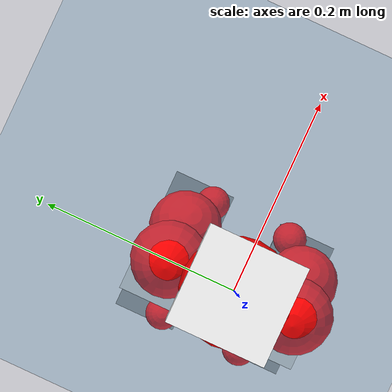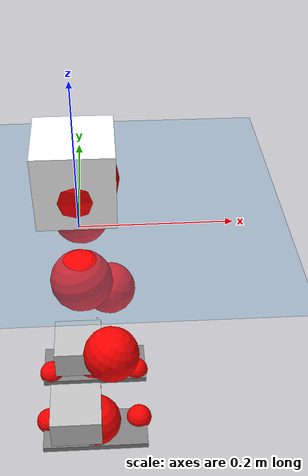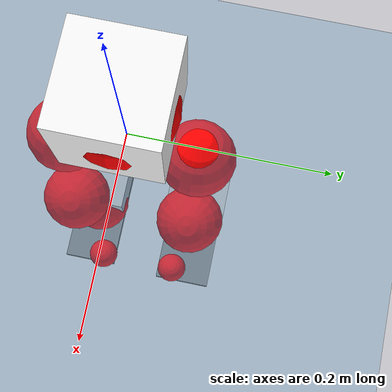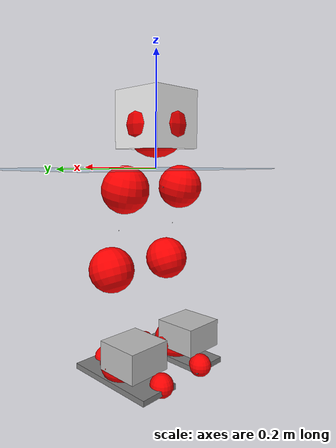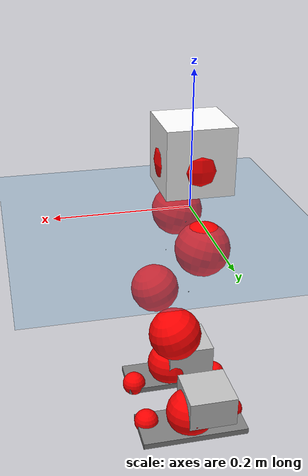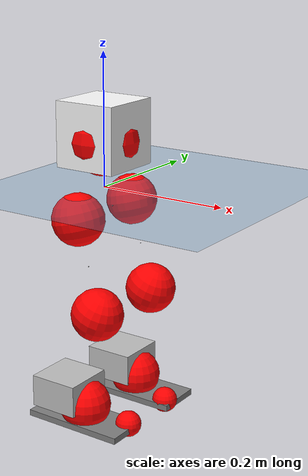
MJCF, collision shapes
<mujoco model="pi_12dof_release_v1">
  <compiler angle="radian" assetdir="assets" balanceinertia="true" inertiafromgeom="false"/>

  <option timestep="0.005" density="1.2" viscosity="2e-05"/>

  <size nkey="1"/>

  <visual>
    <quality shadowsize="8192"/>
    <map shadowclip="0.5"/>
  </visual>

  <default>
    <default class="/">
      <joint armature="0.01" damping="0.01" frictionloss="0.01"/>
      <geom contype="0" conaffinity="0" group="1" solref="-1000 -80"/>
      <site size="0.01 0.005 0.005" group="5"/>
      <general forcelimited="true" biastype="affine" gainprm="20" biasprm="0 -20 -0.5"/>
      <default class="foot">
        <geom size="0.0845 0.036 0.005" type="box" condim="6" group="4" priority="1" friction="0.9 0.2 0.2" solimp="0.015 1 0.005"/>
      </default>
      <default class="reward_collision_sphere">
        <geom group="5" rgba="1 0 0 1"/>
      </default>
    </default>
  </default>

  <asset>
    <texture type="skybox" colorspace="auto" name="//unnamed_texture_0" builtin="gradient" rgb1="0.95 0.95 0.95" rgb2="0.95 0.95 0.95" width="100" height="600"/>
    <texture type="2d" colorspace="auto" name="texplane" builtin="checker" rgb1="0.345 0.575 0.748" rgb2="0.345 0.575 0.748" markrgb="1 1 1" width="512" height="512"/>
    <material name="MatPlane" class="/" texture="texplane" texuniform="true" texrepeat="2 2" specular="0.9"/>
    <mesh name="baselink_1" class="/" file="baselink_1.STL"/>
    <mesh name="r_hip_pitch_link" class="/" file="r_hip_pitch_link.STL"/>
    <mesh name="r_hip_roll_link" class="/" file="r_hip_roll_link.STL"/>
    <mesh name="r_thigh_link" class="/" file="r_thigh_link.STL"/>
    <mesh name="r_calf_link" class="/" file="r_calf_link.STL"/>
    <mesh name="r_ankle_pitch_link" class="/" file="r_ankle_pitch_link.STL"/>
    <mesh name="r_ankle_roll_link" class="/" file="r_ankle_roll_link.STL"/>
    <mesh name="l_hip_pitch_link" class="/" file="l_hip_pitch_link.STL"/>
    <mesh name="l_hip_roll_link" class="/" file="l_hip_roll_link.STL"/>
    <mesh name="l_thigh_link" class="/" file="l_thigh_link.STL"/>
    <mesh name="l_calf_link" class="/" file="l_calf_link.STL"/>
    <mesh name="l_ankle_pitch_link" class="/" file="l_ankle_pitch_link.STL"/>
    <mesh name="l_ankle_roll_link" class="/" file="l_ankle_roll_link.STL"/>
  </asset>

  <worldbody>
    <geom name="floor" class="/" size="100 100 0.125" type="plane" group="0" material="MatPlane"/>
    <light name="toplight_shadow" class="/" pos="0 0 5" dir="0.0990148 0.0990148 -0.990148" type="directional" ambient="0.04 0.04 0.04" diffuse="0.55 0.55 0.55" specular="0.12 0.12 0.12"/>
    <light name="toplight_fill" class="/" pos="0 0 5" dir="0.0990148 0.0990148 -0.990148" type="directional" castshadow="false" ambient="0.04 0.04 0.04" diffuse="0.3 0.3 0.3" specular="0.08 0.08 0.08"/>
    <body name="trunk" pos="-0.000359461 -4.78747e-05 -0.000154336" quat="1 -0.000225228 0.000110745 -0.000198064">
      <inertial pos="0.00126406 -0.00107485 0.0418757" quat="0.696343 0.0077878 0.00898524 0.717611" mass="2.06502" diaginertia="0.0124566 0.00446517 0.00486573"/>
      <joint name="//unnamed_joint_0" type="free"/>
      <geom name="//unnamed_geom_1" class="/" type="mesh" density="0" rgba="1 1 1 1" mesh="baselink_1"/>
      <geom name="//unnamed_geom_2" class="/" size="0.0491998 0.0491998 0.0491998" pos="0 0 0.0825006" type="box" rgba="1 1 1 1"/>
      <geom name="//unnamed_geom_3" class="reward_collision_sphere" size="0.0541197" pos="0 0 0.0721881"/>
      <site name="imu" class="/" pos="0.00189386 -0.000298045 -0.0017956" size="0.00983995"/>
      <camera name="track" class="/" pos="0 -1.74003 0" quat="0.707107 0.707107 0 0" mode="trackcom"/>
      <camera name="ego_camera" class="/" pos="0.0788033 0 0.185626" quat="-0.5 -0.5 0.5 0.5"/>
      <body name="r_hip_pitch_link" pos="0.000566032 -0.0187522 -0.033233" quat="0.992202 -2.49098e-05 -0.124642 3.15615e-05">
        <inertial pos="0.00115487 -0.0482686 -2.07031e-05" quat="-0.0187592 0.706007 -0.0282879 0.707391" mass="0.344024" diaginertia="0.00013745 4.84355e-05 9.56602e-05"/>
        <joint name="r_hip_pitch_joint" class="/" pos="0 0 0" axis="-0.00136983 -0.999999 0.000329076" range="-1.74945 1.23657" armature="0.0098843" damping="0.0134768" frictionloss="0.0101018"/>
        <geom name="//unnamed_geom_4" class="/" type="mesh" density="0" rgba="0.75294 0.75294 0.75294 1" mesh="r_hip_pitch_link"/>
        <geom name="//unnamed_geom_5" class="/" size="0.000491998 0.000491998 0.000491998" type="box" rgba="0.75294 0.75294 0.75294 1"/>
        <body name="r_hip_roll_link" pos="0.0014046 -0.0473445 -0.000914964" quat="1 6.15908e-06 -1.54194e-05 -6.45422e-06">
          <inertial pos="-0.00122198 -5.04762e-05 -0.0637323" quat="0.707641 -0.0790821 -0.0812238 0.697419" mass="0.374705" diaginertia="0.000428737 0.000137484 0.000150409"/>
          <joint name="r_hip_roll_joint" class="/" pos="0 0 0" axis="-0.999994 -0.00341958 -0.00102033" range="-0.116662 0.498721" armature="0.0103008" damping="0.00108555" frictionloss="0.0101082"/>
          <geom name="//unnamed_geom_6" class="/" type="mesh" density="0" rgba="0.75294 0.75294 0.75294 1" mesh="r_hip_roll_link"/>
          <geom name="//unnamed_geom_7" class="/" size="0.000491998 0.000491998 0.000491998" type="box" rgba="0.75294 0.75294 0.75294 1"/>
          <geom name="//unnamed_geom_8" class="reward_collision_sphere" size="0.0393598"/>
          <body name="r_thigh_link" pos="-0.000910051 0.00106711 -0.070887" quat="1 -7.43808e-05 -6.78462e-05 -0.000151626">
            <inertial pos="0.000411992 0.00126546 -0.0481205" quat="0.737049 0.675839 0.000762846 -0.000206736" mass="0.106743" diaginertia="0.00015965 4.68466e-05 6.75844e-05"/>
            <joint name="r_thigh_joint" class="/" pos="0 0 0" axis="-0.000100766 -0.000911776 -1" range="-0.287286 0.584176" armature="0.010079" damping="0.00973952" frictionloss="0.00944089"/>
            <geom name="//unnamed_geom_9" class="/" type="mesh" density="0" rgba="0.75294 0.75294 0.75294 1" mesh="r_thigh_link"/>
            <geom name="//unnamed_geom_10" class="/" size="0.000491998 0.000491998 0.000491998" type="box" rgba="0.75294 0.75294 0.75294 1"/>
            <body name="r_calf_link" pos="-0.000693612 -0.00255869 -0.0726307" quat="0.94764 -1.58458e-05 0.319342 9.96415e-06">
              <inertial pos="0.000502538 -0.0019005 -0.0711548" quat="0.999995 0.000169462 0.00152471 0.0027584" mass="0.781967" diaginertia="0.00455921 0.00176062 0.000206281"/>
              <joint name="r_calf_joint" class="/" pos="0 0 0" axis="-0.000523584 -0.999987 -0.0050176" stiffness="0.00153643" range="-1.65045 0.637988" armature="0.0102551" damping="0.00732282" frictionloss="0.00971495"/>
              <geom name="//unnamed_geom_11" class="/" type="mesh" density="0" rgba="0.75294 0.75294 0.75294 1" mesh="r_calf_link"/>
              <geom name="//unnamed_geom_12" class="/" size="0.000491998 0.000491998 0.000491998" type="box" rgba="0.75294 0.75294 0.75294 1"/>
              <geom name="//unnamed_geom_13" class="reward_collision_sphere" size="0.0393598"/>
              <body name="r_ankle_pitch_link" pos="-0.000154879 0.000622955 -0.144508" quat="0.980071 -3.63955e-05 -0.198645 -2.12828e-07">
                <inertial pos="0.00527644 0.00280449 0.000692188" quat="-0.000867434 0.70938 -0.00118581 0.704824" mass="0.165528" diaginertia="0.000395969 0.00011026 0.000139578"/>
                <joint name="r_ankle_pitch_joint" class="/" pos="0 0 0" axis="-0.0055924 -0.999984 4.40717e-05" range="-1.29839 0.483849" armature="0.00936292" damping="0.00734493" frictionloss="0.00989268"/>
                <geom name="//unnamed_geom_14" class="/" type="mesh" density="0" rgba="0.75294 0.75294 0.75294 1" mesh="r_ankle_pitch_link"/>
                <geom name="//unnamed_geom_15" class="/" size="0.0383758 0.0393598 0.0245999" type="box" rgba="0.75294 0.75294 0.75294 1"/>
                <body name="r_ankle_roll_link" pos="0.0811122 0.00314064 -0.000250654" quat="1 0.000135032 0.000380139 2.90733e-05">
                  <inertial pos="-0.0246601 0.000164271 -0.0150602" quat="0.561714 0.432229 0.431436 0.558139" mass="0.485402" diaginertia="0.00143115 0.0005151 0.000327848"/>
                  <joint name="r_ankle_roll_joint" class="/" pos="0 0 0" axis="-0.999993 -0.00148932 0.00337611" range="-0.167329 0.153385" armature="0.0101138" damping="0.00709939" frictionloss="0.0100027"/>
                  <geom name="//unnamed_geom_16" class="/" type="mesh" density="0" rgba="0.75294 0.75294 0.75294 1" mesh="r_ankle_roll_link"/>
                  <geom name="//unnamed_geom_17" class="/" type="mesh" rgba="0.75294 0.75294 0.75294 1" mesh="r_ankle_roll_link"/>
                  <geom name="right_foot" class="foot" size="0.0808376 0.0343139 0.00474617" pos="-0.0535862 0 -0.0453754"/>
                  <geom name="//unnamed_geom_19" class="reward_collision_sphere" size="0.0393598" pos="-0.0525355 0 -0.0206252"/>
                  <geom name="//unnamed_geom_20" class="reward_collision_sphere" size="0.0196799" pos="0.0157607 0.0174003 -0.0412503"/>
                  <geom name="//unnamed_geom_21" class="reward_collision_sphere" size="0.0196799" pos="-0.126085 0.0174003 -0.0412503"/>
                  <site name="right_foot" class="foot" pos="-0.0535862 0 -0.0453754" size="0.00983995"/>
                </body>
              </body>
            </body>
          </body>
        </body>
      </body>
      <body name="l_hip_pitch_link" pos="5.54043e-05 0.0207986 -0.0337595" quat="0.9922 2.2674e-06 -0.124653 6.77829e-06">
        <inertial pos="0.00106744 0.046031 -0.000837092" quat="-0.0372989 0.706268 0.0311431 0.706275" mass="0.373444" diaginertia="0.000167927 5.24185e-05 0.000119545"/>
        <joint name="l_hip_pitch_joint" class="/" pos="0 0 0" axis="-1.10322e-05 1 -0.000220981" range="-1.23687 1.75024" armature="0.00973808" damping="0.00756989" frictionloss="0.0102609"/>
        <geom name="//unnamed_geom_22" class="/" type="mesh" density="0" rgba="0.75294 0.75294 0.75294 1" mesh="l_hip_pitch_link"/>
        <geom name="//unnamed_geom_23" class="/" size="0.000491998 0.000491998 0.000491998" type="box" rgba="0.75294 0.75294 0.75294 1"/>
        <body name="l_hip_roll_link" pos="0.000745316 0.0494428 -0.000473109" quat="1 -6.66526e-06 -4.51979e-06 -5.03364e-05">
          <inertial pos="-0.00226658 -0.000223523 -0.0638682" quat="0.69929 -0.0743972 -0.0782739 0.706634" mass="0.37595" diaginertia="0.000425982 0.000138347 0.000150815"/>
          <joint name="l_hip_roll_joint" class="/" pos="0 0 0" axis="-1 0.00041791 -0.000689723" range="-0.503145 0.106778" armature="0.00963604" damping="0.00231361" frictionloss="0.0102856"/>
          <geom name="//unnamed_geom_24" class="/" type="mesh" density="0" rgba="0.75294 0.75294 0.75294 1" mesh="l_hip_roll_link"/>
          <geom name="//unnamed_geom_25" class="/" size="0.000491998 0.000491998 0.000491998" type="box" rgba="0.75294 0.75294 0.75294 1"/>
          <geom name="//unnamed_geom_26" class="reward_collision_sphere" size="0.0393598"/>
          <body name="l_thigh_link" pos="0.000231267 -0.00081508 -0.0707226" quat="1 -1.95902e-05 2.94837e-05 -9.15959e-06">
            <inertial pos="-0.00039768 -0.001657 -0.0487954" quat="0.674555 0.738212 0.00239392 0.00367189" mass="0.108834" diaginertia="0.000164054 4.78154e-05 6.86087e-05"/>
            <joint name="l_thigh_joint" class="/" pos="0 0 0" axis="-0.000620815 0.00055263 -1" range="-0.612168 0.316661" armature="0.00980804" damping="0.00266681" frictionloss="0.00994332"/>
            <geom name="//unnamed_geom_27" class="/" type="mesh" density="0" rgba="0.75294 0.75294 0.75294 1" mesh="l_thigh_link"/>
            <geom name="//unnamed_geom_28" class="/" size="0.000491998 0.000491998 0.000491998" type="box" rgba="0.75294 0.75294 0.75294 1"/>
            <body name="l_calf_link" pos="0.000748893 0.000332026 -0.073" quat="0.947595 -0.000133467 0.319474 3.61133e-05">
              <inertial pos="0.00130732 0.00213514 -0.0731594" quat="0.999935 0.00597914 -0.0031241 0.00918417" mass="0.762763" diaginertia="0.0044558 0.00172746 0.000200789"/>
              <joint name="l_calf_joint" class="/" pos="0 0 0" axis="-0.00232831 0.999995 -0.00207675" stiffness="0.00200724" range="-0.650173 1.64778" armature="0.00991719" damping="0.00526116" frictionloss="0.00970449"/>
              <geom name="//unnamed_geom_29" class="/" type="mesh" density="0" rgba="0.75294 0.75294 0.75294 1" mesh="l_calf_link"/>
              <geom name="//unnamed_geom_30" class="/" size="0.000491998 0.000491998 0.000491998" type="box" rgba="0.75294 0.75294 0.75294 1"/>
              <geom name="//unnamed_geom_31" class="reward_collision_sphere" size="0.0393598"/>
              <body name="l_ankle_pitch_link" pos="0.00139543 0.000132961 -0.144541" quat="0.980088 8.548e-05 -0.198565 -8.59619e-05">
                <inertial pos="0.00511088 -0.00163681 0.00042758" quat="-0.00222945 0.707107 0.00221995 0.7071" mass="0.170849" diaginertia="0.000401466 0.000112114 0.000140973"/>
                <joint name="l_ankle_pitch_joint" class="/" pos="0 0 0" axis="-3.21158e-05 1 -0.000927131" range="-0.485943 1.32051" armature="0.0102417" damping="0.00621576" frictionloss="0.00958267"/>
                <geom name="//unnamed_geom_32" class="/" type="mesh" density="0" rgba="0.75294 0.75294 0.75294 1" mesh="l_ankle_pitch_link"/>
                <geom name="//unnamed_geom_33" class="/" size="0.0383758 0.0393598 0.0245999" type="box" rgba="0.75294 0.75294 0.75294 1"/>
                <body name="l_ankle_roll_link" pos="0.0789745 0.000233585 6.30637e-05" quat="1 -9.38814e-05 9.24955e-05 0.000200903">
                  <inertial pos="-0.0262744 0.000548469 -0.0144987" quat="0.55758 0.432011 0.434932 0.559736" mass="0.494647" diaginertia="0.00146171 0.000513829 0.000333535"/>
                  <joint name="l_ankle_roll_joint" class="/" pos="0 0 0" axis="-1 -0.000197772 0.000579841" range="-0.157457 0.169098" armature="0.00960433" damping="0.010506" frictionloss="0.00951778"/>
                  <geom name="//unnamed_geom_34" class="/" type="mesh" density="0" rgba="0.75294 0.75294 0.75294 1" mesh="l_ankle_roll_link"/>
                  <geom name="//unnamed_geom_35" class="/" type="mesh" rgba="0.75294 0.75294 0.75294 1" mesh="l_ankle_roll_link"/>
                  <geom name="left_foot" class="foot" size="0.0854013 0.0367314 0.00479482" pos="-0.0535862 0 -0.0453754"/>
                  <geom name="//unnamed_geom_37" class="reward_collision_sphere" size="0.0393598" pos="-0.0525355 0 -0.0206252"/>
                  <geom name="//unnamed_geom_38" class="reward_collision_sphere" size="0.0196799" pos="0.0157607 -0.0174003 -0.0412503"/>
                  <geom name="//unnamed_geom_39" class="reward_collision_sphere" size="0.0196799" pos="-0.126085 -0.0174003 -0.0412503"/>
                  <site name="left_foot" class="foot" pos="-0.0535862 0 -0.0453754" size="0.00983995"/>
                </body>
              </body>
            </body>
          </body>
        </body>
      </body>
    </body>
  </worldbody>

  <contact>
    <pair class="/" geom1="floor" geom2="right_foot" name="//unnamed_contact_1"/>
    <pair class="/" geom1="floor" geom2="left_foot" name="//unnamed_contact_0"/>
  </contact>

  <actuator>
    <general name="r_hip_pitch_joint" class="/" joint="r_hip_pitch_joint" forcerange="-20.3556 20.3556" gainprm="19.1626" biasprm="0 -19.1626 -0.485982"/>
    <general name="r_hip_roll_joint" class="/" joint="r_hip_roll_joint" forcerange="-20.651 20.651" gainprm="19.1626" biasprm="0 -19.1626 -0.485982"/>
    <general name="r_thigh_joint" class="/" joint="r_thigh_joint" forcerange="-20.5021 20.5021" gainprm="19.1626" biasprm="0 -19.1626 -0.485982"/>
    <general name="r_calf_joint" class="/" joint="r_calf_joint" forcerange="-20.8401 20.8401" gainprm="19.1626" biasprm="0 -19.1626 -0.485982"/>
    <general name="r_ankle_pitch_joint" class="/" joint="r_ankle_pitch_joint" forcerange="-20.9465 20.9465" gainprm="19.1626" biasprm="0 -19.1626 -0.485982"/>
    <general name="r_ankle_roll_joint" class="/" joint="r_ankle_roll_joint" forcerange="-20.6123 20.6123" gainprm="19.1626" biasprm="0 -19.1626 -0.485982"/>
    <general name="l_hip_pitch_joint" class="/" joint="l_hip_pitch_joint" forcerange="-21.1454 21.1454" gainprm="19.1626" biasprm="0 -19.1626 -0.485982"/>
    <general name="l_hip_roll_joint" class="/" joint="l_hip_roll_joint" forcerange="-20.226 20.226" gainprm="19.1626" biasprm="0 -19.1626 -0.485982"/>
    <general name="l_thigh_joint" class="/" joint="l_thigh_joint" forcerange="-20.7335 20.7335" gainprm="19.1626" biasprm="0 -19.1626 -0.485982"/>
    <general name="l_calf_joint" class="/" joint="l_calf_joint" forcerange="-20.7063 20.7063" gainprm="19.1626" biasprm="0 -19.1626 -0.485982"/>
    <general name="l_ankle_pitch_joint" class="/" joint="l_ankle_pitch_joint" forcerange="-20.0443 20.0443" gainprm="19.1626" biasprm="0 -19.1626 -0.485982"/>
    <general name="l_ankle_roll_joint" class="/" joint="l_ankle_roll_joint" forcerange="-20.2554 20.2554" gainprm="19.1626" biasprm="0 -19.1626 -0.485982"/>
  </actuator>

  <sensor>
    <gyro site="imu" name="imu_angular_velocity"/>
    <velocimeter site="imu" name="imu_linear_velocity"/>
    <framelinvel objtype="site" objname="left_foot" name="left_foot_global_linear_velocity"/>
    <framelinvel objtype="site" objname="right_foot" name="right_foot_global_linear_velocity"/>
  </sensor>

  <keyframe>
    <key name="home" qpos="0 0 0.291 1 0 0 0 0.4 0 0 -0.8 0.4 0 -0.4 0 0 0.8 -0.4 0"/>
  </keyframe>
</mujoco>
